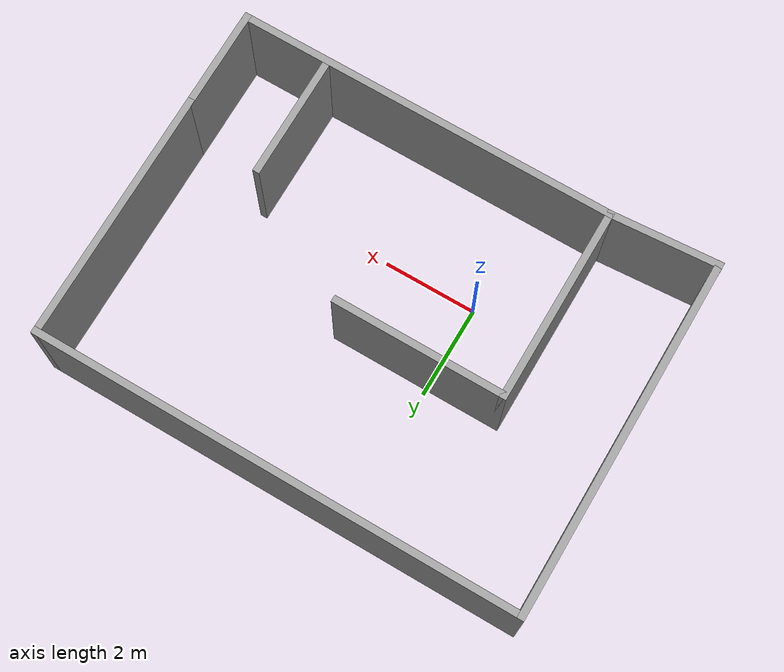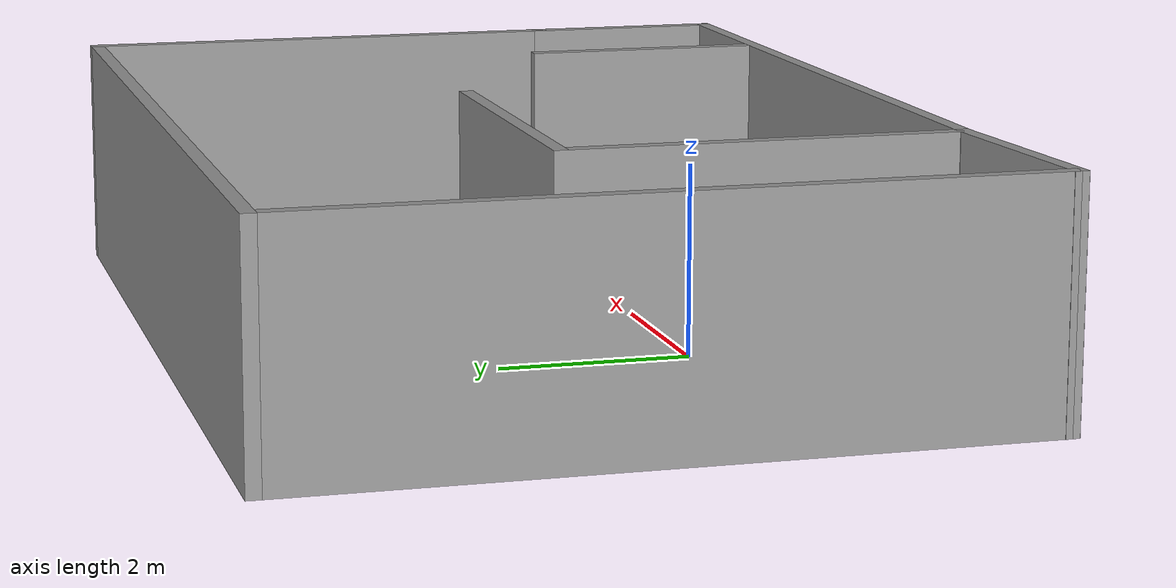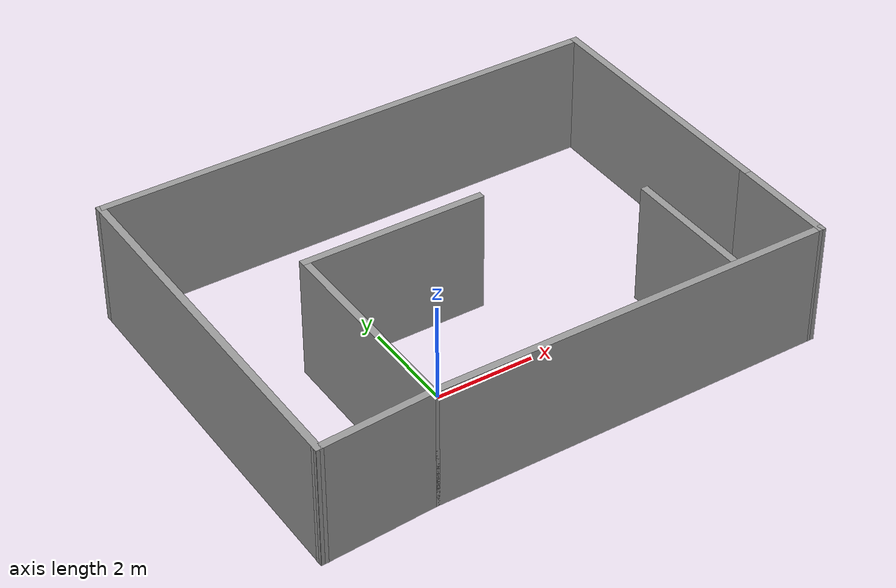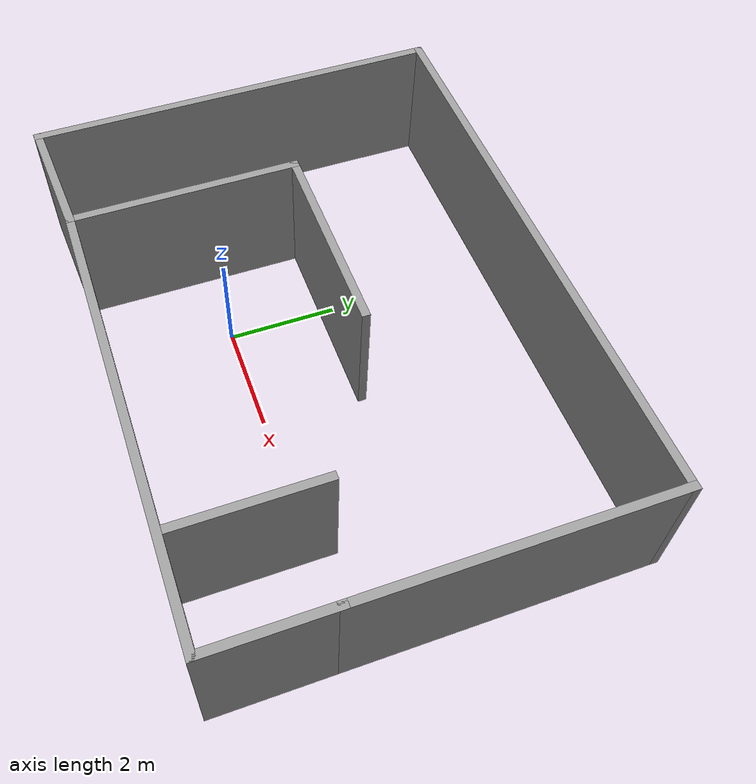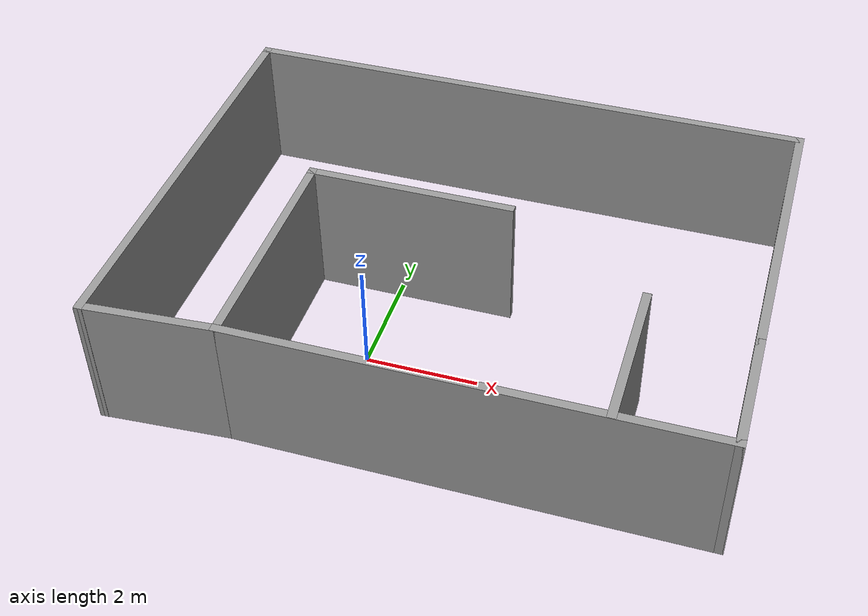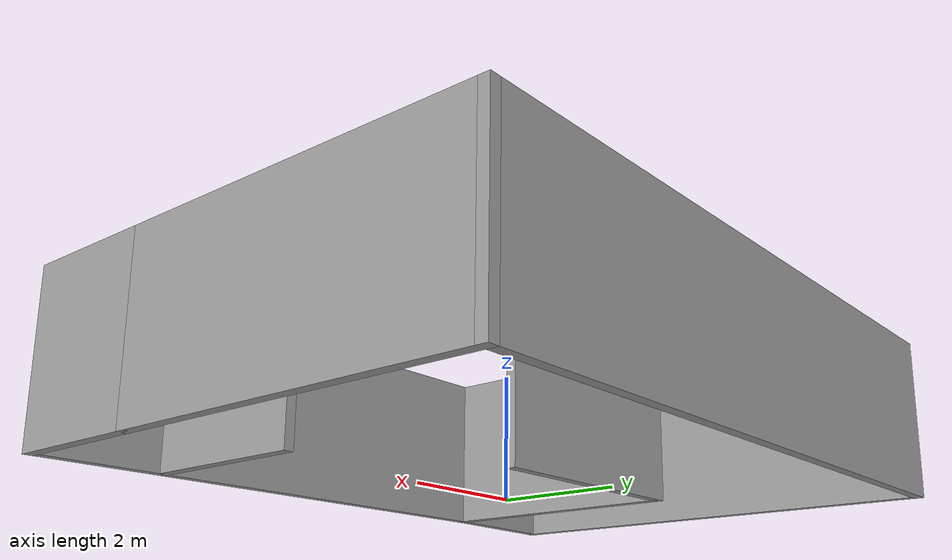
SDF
<?xml version='1.0'?>
<sdf version='1.7'>
  <model name='building_map_model'>
    <pose>1.37259 1.35759 0 0 -0 0</pose>
    <link name='Wall_1'>
      <collision name='Wall_1_Collision'>
        <geometry>
          <box>
            <size>8.25 0.15 2.5</size>
          </box>
        </geometry>
        <pose>0 0 1.25 0 -0 0</pose>
      </collision>
      <visual name='Wall_1_Visual'>
        <pose>0 0 1.25 0 -0 0</pose>
        <geometry>
          <box>
            <size>8.25 0.15 2.5</size>
          </box>
        </geometry>
        <material>
          <script>
            <uri>file://media/materials/scripts/gazebo.material</uri>
            <name>Gazebo/Grey</name>
          </script>
          <ambient>1 1 1 1</ambient>
        </material>
        <meta>
          <layer>0</layer>
        </meta>
      </visual>
      <pose>1.12741 -3.64759 0 0 -0 0</pose>
    </link>
    <link name='Wall_10'>
      <collision name='Wall_10_Collision'>
        <geometry>
          <box>
            <size>2.40499 0.15 2.5</size>
          </box>
        </geometry>
        <pose>0 0 1.25 0 -0 0</pose>
      </collision>
      <visual name='Wall_10_Visual'>
        <pose>0 0 1.25 0 -0 0</pose>
        <geometry>
          <box>
            <size>2.40499 0.15 2.5</size>
          </box>
        </geometry>
        <material>
          <script>
            <uri>file://media/materials/scripts/gazebo.material</uri>
            <name>Gazebo/Grey</name>
          </script>
          <ambient>1 1 1 1</ambient>
        </material>
        <meta>
          <layer>0</layer>
        </meta>
      </visual>
      <pose>-4.04759 -3.72259 0 0 -0 0.066568</pose>
    </link>
    <link name='Wall_11'>
      <collision name='Wall_11_Collision'>
        <geometry>
          <box>
            <size>4.25 0.15 2.5</size>
          </box>
        </geometry>
        <pose>0 0 1.25 0 -0 0</pose>
      </collision>
      <visual name='Wall_11_Visual'>
        <pose>0 0 1.25 0 -0 0</pose>
        <geometry>
          <box>
            <size>4.25 0.15 2.5</size>
          </box>
        </geometry>
        <material>
          <script>
            <uri>file://media/materials/scripts/gazebo.material</uri>
            <name>Gazebo/Grey</name>
          </script>
          <ambient>1 1 1 1</ambient>
        </material>
        <meta>
          <layer>0</layer>
        </meta>
      </visual>
      <pose>-2.92259 -1.59759 0 0 -0 1.5708</pose>
    </link>
    <link name='Wall_12'>
      <collision name='Wall_12_Collision'>
        <geometry>
          <box>
            <size>3.75 0.15 2.5</size>
          </box>
        </geometry>
        <pose>0 0 1.25 0 -0 0</pose>
      </collision>
      <visual name='Wall_12_Visual'>
        <pose>0 0 1.25 0 -0 0</pose>
        <geometry>
          <box>
            <size>3.75 0.15 2.5</size>
          </box>
        </geometry>
        <material>
          <script>
            <uri>file://media/materials/scripts/gazebo.material</uri>
            <name>Gazebo/Grey</name>
          </script>
          <ambient>1 1 1 1</ambient>
        </material>
        <meta>
          <layer>0</layer>
        </meta>
      </visual>
      <pose>-1.12259 0.452411 0 0 -0 0</pose>
    </link>
    <link name='Wall_14'>
      <collision name='Wall_14_Collision'>
        <geometry>
          <box>
            <size>2.75 0.15 2.5</size>
          </box>
        </geometry>
        <pose>0 0 1.25 0 -0 0</pose>
      </collision>
      <visual name='Wall_14_Visual'>
        <pose>0 0 1.25 0 -0 0</pose>
        <geometry>
          <box>
            <size>2.75 0.15 2.5</size>
          </box>
        </geometry>
        <material>
          <script>
            <uri>file://media/materials/scripts/gazebo.material</uri>
            <name>Gazebo/Grey</name>
          </script>
          <ambient>1 1 1 1</ambient>
        </material>
        <meta>
          <layer>0</layer>
        </meta>
      </visual>
      <pose>3.31737 -2.33951 0 0 -0 -1.5708</pose>
    </link>
    <link name='Wall_4'>
      <collision name='Wall_4_Collision'>
        <geometry>
          <box>
            <size>2.25 0.15 2.5</size>
          </box>
        </geometry>
        <pose>0 0 1.25 0 -0 0</pose>
      </collision>
      <visual name='Wall_4_Visual'>
        <pose>0 0 1.25 0 -0 0</pose>
        <geometry>
          <box>
            <size>2.25 0.15 2.5</size>
          </box>
        </geometry>
        <material>
          <script>
            <uri>file://media/materials/scripts/gazebo.material</uri>
            <name>Gazebo/Grey</name>
          </script>
          <ambient>1 1 1 1</ambient>
        </material>
        <meta>
          <layer>0</layer>
        </meta>
      </visual>
      <pose>5.17741 -2.59759 0 0 -0 1.5708</pose>
    </link>
    <link name='Wall_7'>
      <collision name='Wall_7_Collision'>
        <geometry>
          <box>
            <size>5.5 0.15 2.5</size>
          </box>
        </geometry>
        <pose>0 0 1.25 0 -0 0</pose>
      </collision>
      <visual name='Wall_7_Visual'>
        <pose>0 0 1.25 0 -0 0</pose>
        <geometry>
          <box>
            <size>5.5 0.15 2.5</size>
          </box>
        </geometry>
        <material>
          <script>
            <uri>file://media/materials/scripts/gazebo.material</uri>
            <name>Gazebo/Grey</name>
          </script>
          <ambient>1 1 1 1</ambient>
        </material>
        <meta>
          <layer>0</layer>
        </meta>
      </visual>
      <pose>5.17741 1.12741 0 0 -0 1.5708</pose>
    </link>
    <link name='Wall_8'>
      <collision name='Wall_8_Collision'>
        <geometry>
          <box>
            <size>10.5 0.15 2.5</size>
          </box>
        </geometry>
        <pose>0 0 1.25 0 -0 0</pose>
      </collision>
      <visual name='Wall_8_Visual'>
        <pose>0 0 1.25 0 -0 0</pose>
        <geometry>
          <box>
            <size>10.5 0.15 2.5</size>
          </box>
        </geometry>
        <material>
          <script>
            <uri>file://media/materials/scripts/gazebo.material</uri>
            <name>Gazebo/Grey</name>
          </script>
          <ambient>1 1 1 1</ambient>
        </material>
        <meta>
          <layer>0</layer>
        </meta>
      </visual>
      <pose>0.002411 3.80241 0 0 -0 3.14159</pose>
    </link>
    <link name='Wall_9'>
      <collision name='Wall_9_Collision'>
        <geometry>
          <box>
            <size>7.75 0.15 2.5</size>
          </box>
        </geometry>
        <pose>0 0 1.25 0 -0 0</pose>
      </collision>
      <visual name='Wall_9_Visual'>
        <pose>0 0 1.25 0 -0 0</pose>
        <geometry>
          <box>
            <size>7.75 0.15 2.5</size>
          </box>
        </geometry>
        <material>
          <script>
            <uri>file://media/materials/scripts/gazebo.material</uri>
            <name>Gazebo/Grey</name>
          </script>
          <ambient>1 1 1 1</ambient>
        </material>
        <meta>
          <layer>0</layer>
        </meta>
      </visual>
      <pose>-5.17259 0.002411 0 0 -0 -1.5708</pose>
    </link>
    <static>1</static>
  </model>
</sdf>
